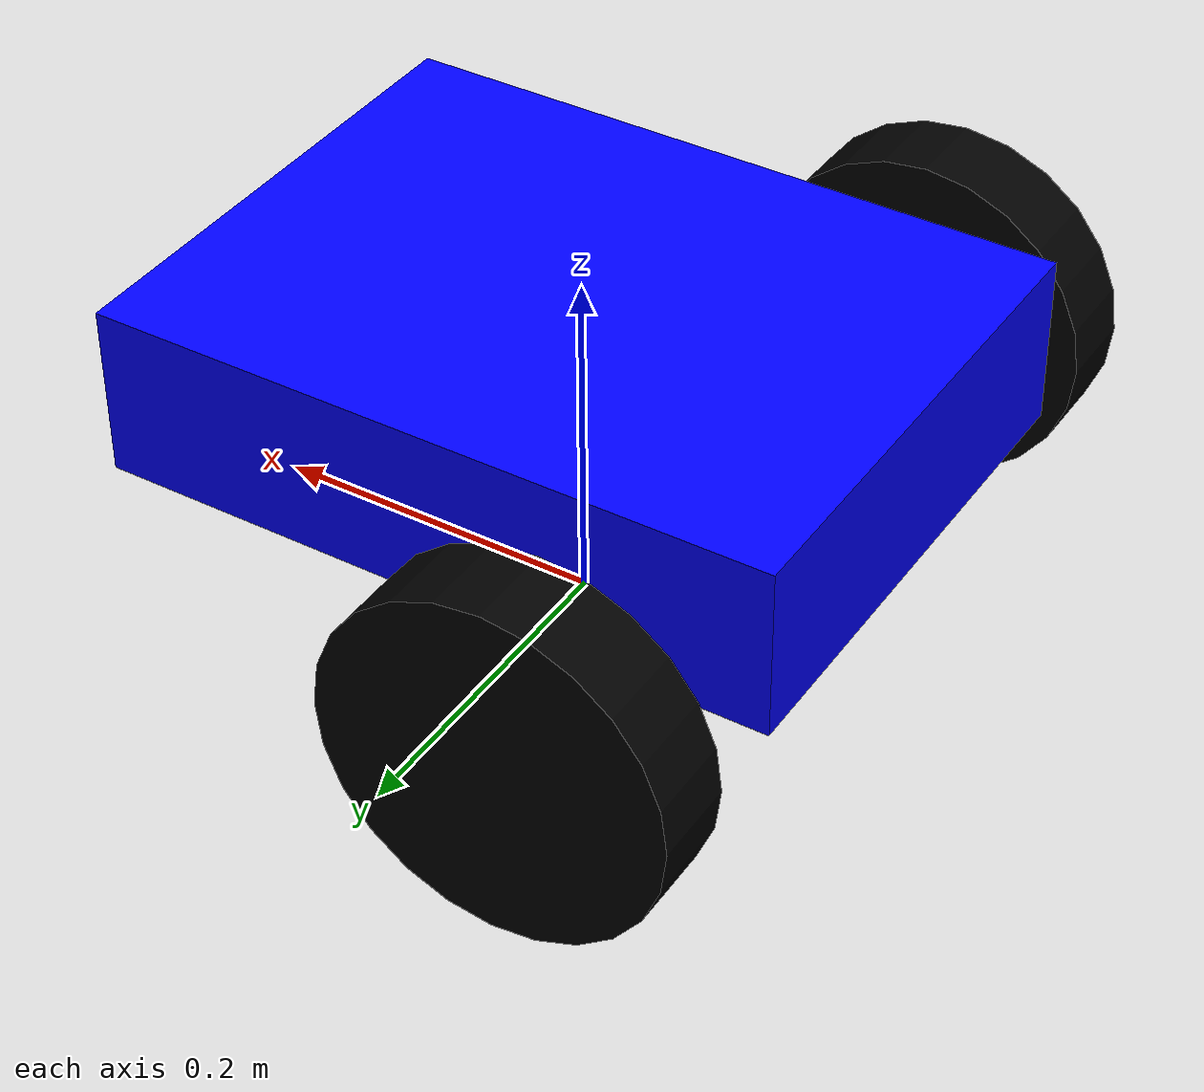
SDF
<?xml version="1.0" ?>
<sdf version="1.8">
  <model name="my_robot">
    <pose>0 0 0.15 0 0 0</pose>

    <link name="base_link">
      <inertial>
        <mass>5.0</mass>
        <inertia>
          <ixx>0.1</ixx><ixy>0</ixy><ixz>0</ixz>
          <iyy>0.1</iyy><iyz>0</iyz>
          <izz>0.15</izz>
        </inertia>
      </inertial>
      <visual name="visual">
        <geometry><box><size>0.4 0.3 0.1</size></box></geometry>
        <material><ambient>0 0 1 1</ambient><diffuse>0 0 1 1</diffuse></material>
      </visual>
      <collision name="collision">
        <geometry><box><size>0.4 0.3 0.1</size></box></geometry>
        <surface>
          <friction>
            <ode>
              <mu>0.01</mu> <mu2>0.01</mu2>
            </ode>
          </friction>
          <contact>
            <ode>
              <kp>1000000.0</kp>
              <kd>1.0</kd>
              <max_vel>0.01</max_vel> <min_depth>0.001</min_depth> </ode>
          </contact>
        </surface>
      </collision>
    </link>

    <link name="left_wheel">
      <pose>-0.1 0.22 -0.05 0 0 0</pose>
      <inertial>
        <mass>0.8</mass>
        <inertia><ixx>0.002</ixx><iyy>0.002</iyy><izz>0.002</izz></inertia>
      </inertial>
      <visual name="visual">
        <pose>0 0 0 1.5708 0 0</pose>
        <geometry><cylinder><radius>0.1</radius><length>0.05</length></cylinder></geometry>
        <material><ambient>0 0 0 1</ambient><diffuse>0 0 0 1</diffuse></material>
      </visual>
      <collision name="collision">
        <pose>0 0 0 1.5708 0 0</pose>
        <geometry><cylinder><radius>0.1</radius><length>0.05</length></cylinder></geometry>
        <surface>
          <friction><ode><mu>1.0</mu><mu2>1.0</mu2></ode></friction>
        </surface>
      </collision>
    </link>

    <link name="right_wheel">
      <pose>-0.1 -0.22 -0.05 0 0 0</pose>
      <inertial>
        <mass>0.8</mass>
        <inertia><ixx>0.002</ixx><iyy>0.002</iyy><izz>0.002</izz></inertia>
      </inertial>
      <visual name="visual">
        <pose>0 0 0 1.5708 0 0</pose>
        <geometry><cylinder><radius>0.1</radius><length>0.05</length></cylinder></geometry>
        <material><ambient>0 0 0 1</ambient><diffuse>0 0 0 1</diffuse></material>
      </visual>
      <collision name="collision">
        <pose>0 0 0 1.5708 0 0</pose>
        <geometry><cylinder><radius>0.1</radius><length>0.05</length></cylinder></geometry>
        <surface>
          <friction><ode><mu>1.0</mu><mu2>1.0</mu2></ode></friction>
        </surface>
      </collision>
    </link>

    <link name="caster_wheel">
      <pose>0.15 0 -0.1 0 0 0</pose>
      <inertial>
        <mass>0.5</mass> <inertia><ixx>0.001</ixx><iyy>0.001</iyy><izz>0.001</izz></inertia>
      </inertial>
      <visual name="visual">
        <geometry><sphere><radius>0.05</radius></sphere></geometry>
        <material><ambient>0.8 0.8 0.8 1</ambient></material>
      </visual>
      <collision name="collision">
        <geometry><sphere><radius>0.05</radius></sphere></geometry>
        <surface>
          <friction>
            <ode>
              <mu>0.0</mu> <mu2>0.0</mu2>
            </ode>
          </friction>
          <contact>
            <ode>
              <kp>1000000.0</kp> <kd>100.0</kd>
            </ode>
          </contact>
        </surface>
      </collision>
    </link>

    <link name="camera_link">
      <pose>0.2 0 0.05 0 0 0</pose>
      <sensor name="camera" type="camera">
        <topic>/model/my_robot/camera/image_raw</topic>
        <camera>
          <horizontal_fov>1.047</horizontal_fov>
          <image><width>640</width><height>480</height></image>
        </camera>
        <always_on>1</always_on>
        <update_rate>20</update_rate>
        <visualize>true</visualize>
      </sensor>
    </link>

    <joint name="left_wheel_joint" type="revolute">
      <parent>base_link</parent><child>left_wheel</child>
      <axis><xyz>0 1 0</xyz><limit><lower>-1e16</lower><upper>1e16</upper></limit></axis>
    </joint>
    <joint name="right_wheel_joint" type="revolute">
      <parent>base_link</parent><child>right_wheel</child>
      <axis><xyz>0 1 0</xyz><limit><lower>-1e16</lower><upper>1e16</upper></limit></axis>
    </joint>
    <joint name="caster_wheel_joint" type="ball">
      <parent>base_link</parent><child>caster_wheel</child>
    </joint>
    <joint name="camera_joint" type="fixed">
      <parent>base_link</parent><child>camera_link</child>
    </joint>

    <plugin filename="gz-sim-diff-drive-system" name="gz::sim::systems::DiffDrive">
      <left_joint>left_wheel_joint</left_joint>
      <right_joint>right_wheel_joint</right_joint>
      <wheel_separation>0.44</wheel_separation> <wheel_radius>0.1</wheel_radius>
      <topic>/model/my_robot/cmd_vel</topic>
      <odom_topic>/model/my_robot/odometry</odom_topic>
    </plugin>
  </model>
</sdf>
